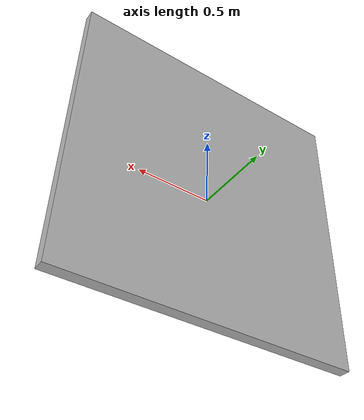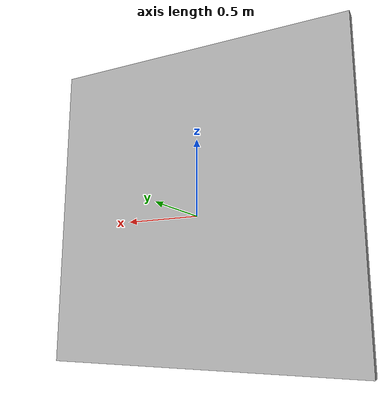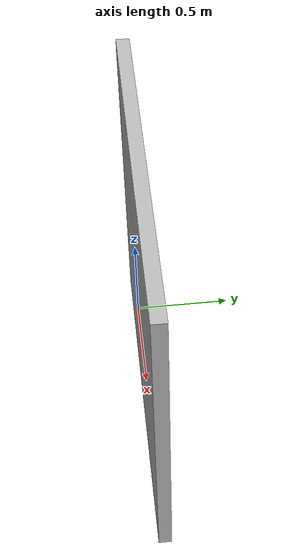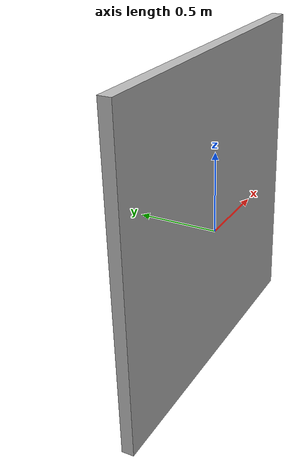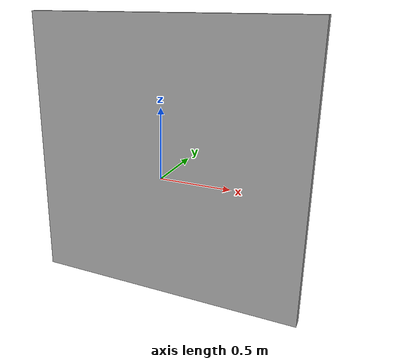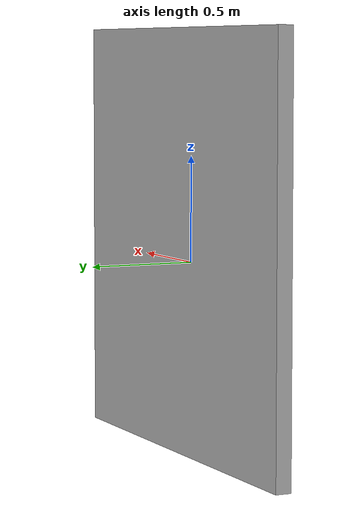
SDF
<?xml version ="1.0"?>
<sdf version="1.6">
  <model name="start_zone">
    <static>true</static>
    <link name="link">

      <visual name="visual1">
        <cast_shadows>false</cast_shadows>
	      <pose> 0 0 0.1 0 0 0</pose>
        <geometry>
          <mesh>
            <uri>model://Aruco_0/meshes/start_zone.obj</uri>

          </mesh>
        </geometry>
      </visual>

    </link>
  </model>
</sdf>
